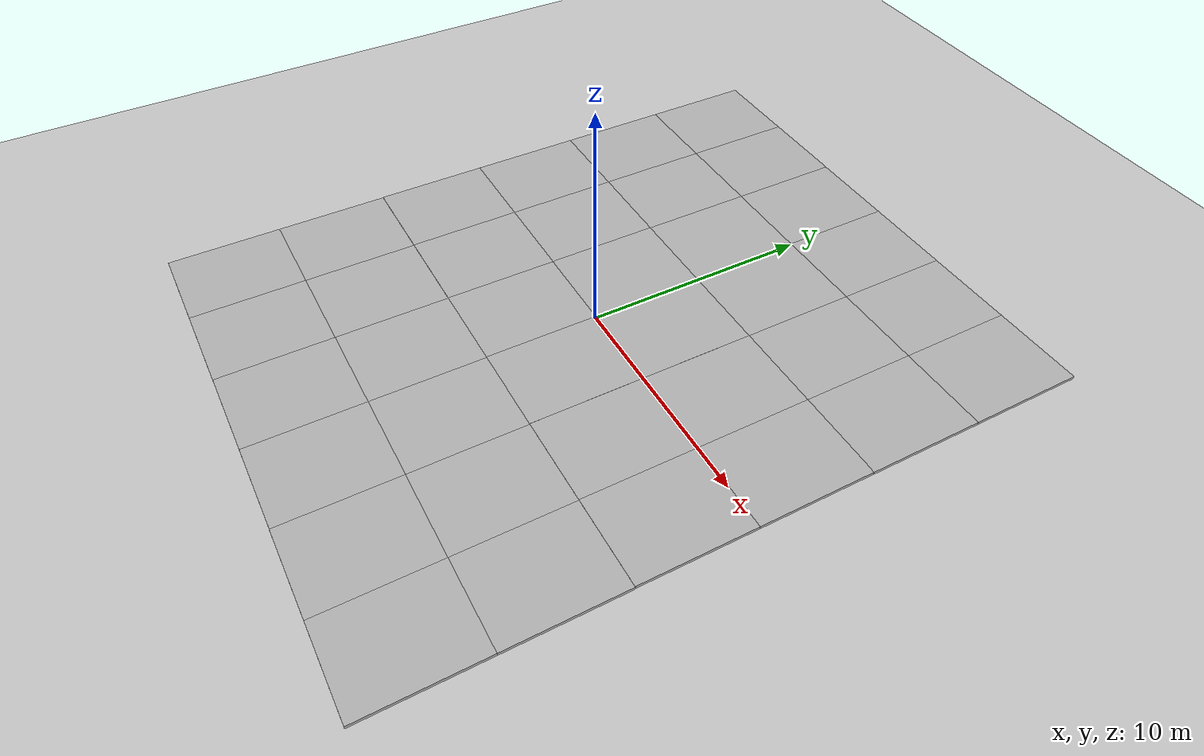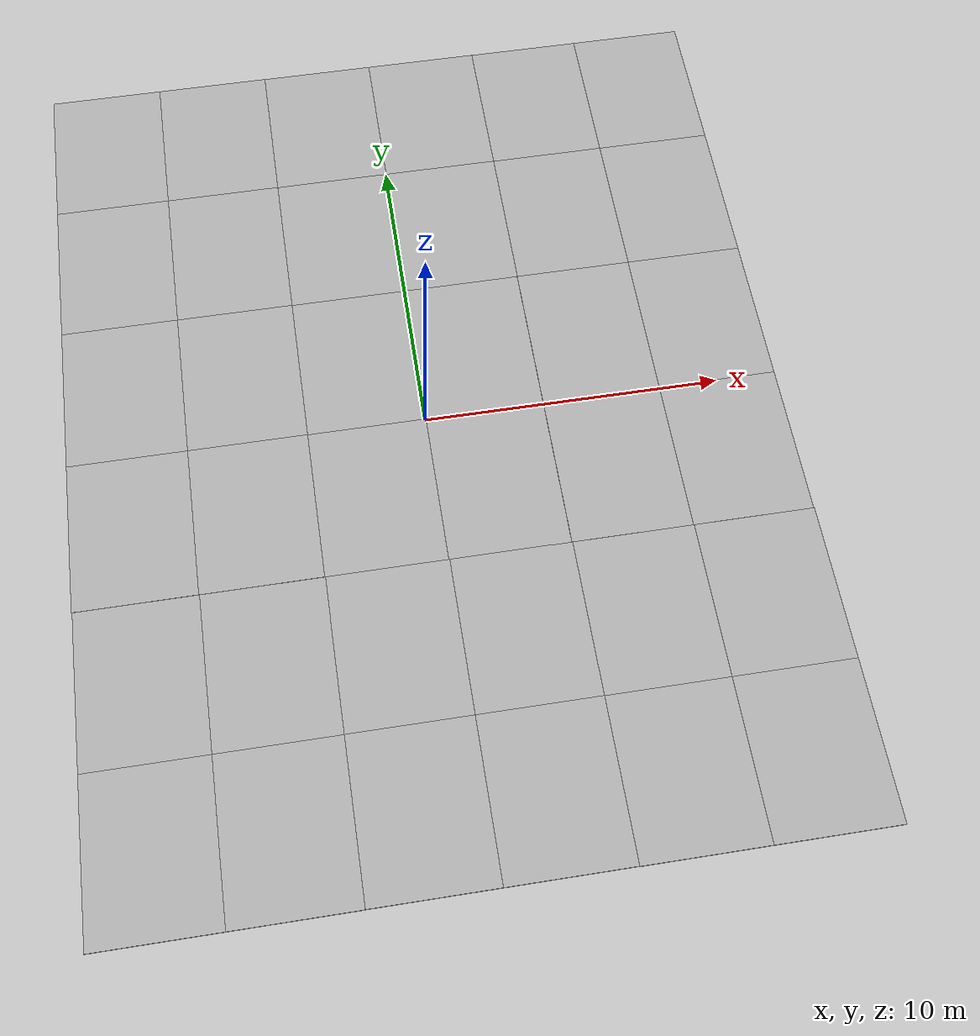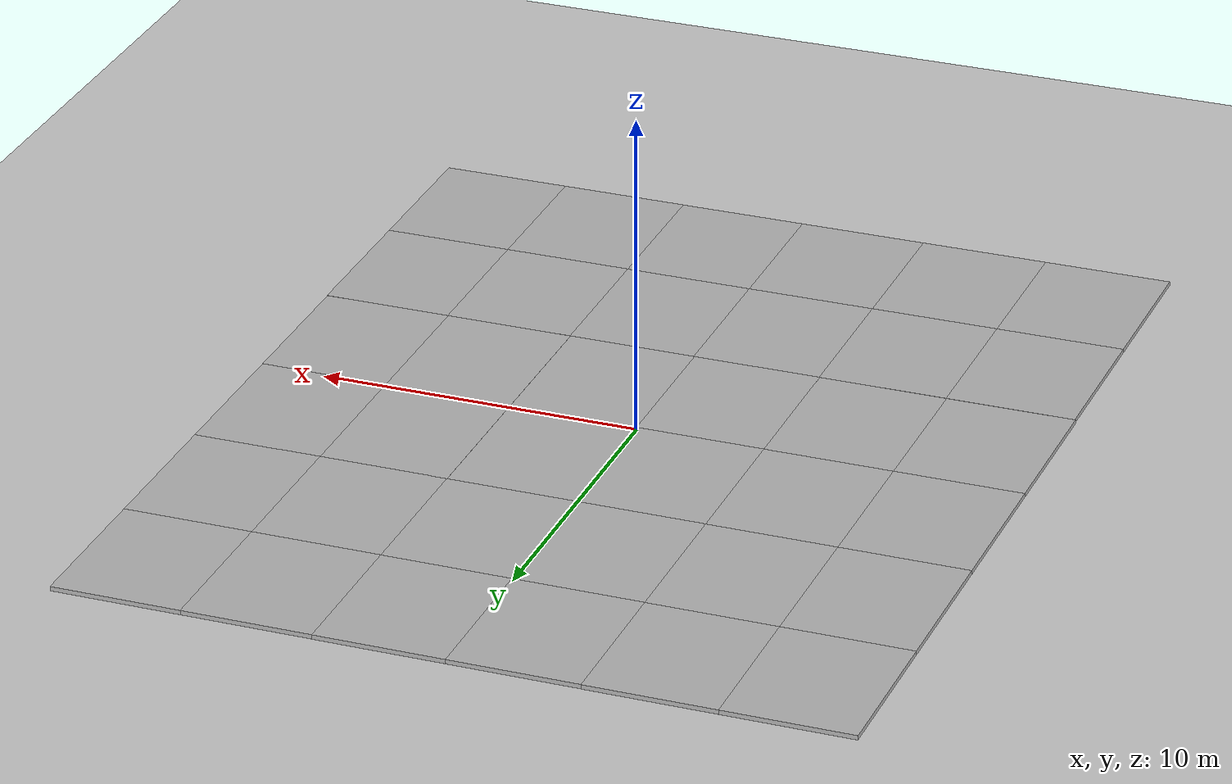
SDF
<sdf version="1.7">
 <world name="default">
  <include><uri>model://apriltag_landing_pad</uri></include>
  <model name="ground_plane">
   <static>1</static>
   <link name="link">
    <collision name="collision">
     <geometry><plane><normal>0 0 1</normal><size>100 100</size></plane></geometry>
     <surface>
      <contact><collide_bitmask>65535</collide_bitmask></contact>
      <friction><ode><mu>100</mu><mu2>50</mu2></ode></friction>
     </surface>
    </collision>
    <visual name="visual">
     <cast_shadows>0</cast_shadows>
     <geometry><plane><normal>0 0 1</normal><size>100 100</size></plane></geometry>
     <material>
      <script><uri>file://media/materials/scripts/gazebo.material</uri><name>Gazebo/Grey</name></script>
     </material>
    </visual>
   </link>
  </model>
  <light name="sun" type="directional">
   <pose>0 0 10 0 -0 0</pose>
   <diffuse>0.8 0.8 0.8 1</diffuse>
   <specular>0.2 0.2 0.2 1</specular>
   <attenuation>
    <range>1000</range>
    <constant>0.9</constant>
    <linear>0.01</linear>
    <quadratic>0.001</quadratic>
   </attenuation>
   <direction>-0.5 0.1 -0.9</direction>
   <spot><inner_angle>0</inner_angle><outer_angle>0</outer_angle><falloff>0</falloff></spot>
  </light>
  <model name="mud_box">
   <static>1</static>
   <link name="mud_box::link">
    <collision name="collision"><geometry><box><size>8 10 0.2</size></box></geometry></collision>
    <visual name="visual_1">
     <pose>-2 2.5 0 0 -0 0</pose>
     <cast_shadows>0</cast_shadows>
     <geometry><box><size>4 5 0.2</size></box></geometry>
     <material>
      <script>
       <uri>model://mud_box/materials/scripts</uri>
       <uri>model://mud_box/materials/textures</uri>
       <name>vrc/mud</name>
      </script>
     </material>
    </visual>
    <visual name="visual_2">
     <pose>2 2.5 0 0 -0 0</pose>
     <cast_shadows>0</cast_shadows>
     <geometry><box><size>4 5 0.2</size></box></geometry>
     <material>
      <script>
       <uri>model://mud_box/materials/scripts</uri>
       <uri>model://mud_box/materials/textures</uri>
       <name>vrc/mud</name>
      </script>
     </material>
    </visual>
    <visual name="visual_3">
     <pose>2 -2.5 0 0 -0 0</pose>
     <cast_shadows>0</cast_shadows>
     <geometry><box><size>4 5 0.2</size></box></geometry>
     <material>
      <script>
       <uri>model://mud_box/materials/scripts</uri>
       <uri>model://mud_box/materials/textures</uri>
       <name>vrc/mud</name>
      </script>
     </material>
    </visual>
    <visual name="visual_4">
     <pose>-2 -2.5 0 0 -0 0</pose>
     <cast_shadows>0</cast_shadows>
     <geometry><box><size>4 5 0.2</size></box></geometry>
     <material>
      <script>
       <uri>model://mud_box/materials/scripts</uri>
       <uri>model://mud_box/materials/textures</uri>
       <name>vrc/mud</name>
      </script>
     </material>
    </visual>
   </link>
  </model>
  <physics name="default_physics" default="0" type="ode">
   <ode>
    <solver>
     <type>quick</type>
     <iters>10</iters>
     <sor>1.3</sor>
     <use_dynamic_moi_rescaling>0</use_dynamic_moi_rescaling>
    </solver>
    <constraints>
     <cfm>0</cfm>
     <erp>0.2</erp>
     <contact_max_correcting_vel>100</contact_max_correcting_vel>
     <contact_surface_layer>0.001</contact_surface_layer>
    </constraints>
   </ode>
   <max_step_size>0.004</max_step_size>
   <real_time_factor>1</real_time_factor>
   <real_time_update_rate>250</real_time_update_rate>
  </physics>
  <gravity>0 0 -9.8066</gravity>
  <magnetic_field>6e-06 2.3e-05 -4.2e-05</magnetic_field>
  <atmosphere type="adiabatic"/>
  <scene><ambient>0.4 0.4 0.4 1</ambient><background>0.7 0.7 0.7 1</background><shadows>1</shadows></scene>
  <spherical_coordinates>
   <surface_model>EARTH_WGS84</surface_model>
   <latitude_deg>0</latitude_deg>
   <longitude_deg>0</longitude_deg>
   <elevation>0</elevation>
   <heading_deg>0</heading_deg>
  </spherical_coordinates>
  <model name="mud_box_clone">
   <static>1</static>
   <link name="mud_box::link">
    <collision name="collision"><geometry><box><size>8 10 0.2</size></box></geometry></collision>
    <visual name="visual_1">
     <pose>-2 2.5 0 0 -0 0</pose>
     <cast_shadows>0</cast_shadows>
     <geometry><box><size>4 5 0.2</size></box></geometry>
     <material>
      <script>
       <uri>model://mud_box/materials/scripts</uri>
       <uri>model://mud_box/materials/textures</uri>
       <name>vrc/mud</name>
      </script>
     </material>
    </visual>
    <visual name="visual_2">
     <pose>2 2.5 0 0 -0 0</pose>
     <cast_shadows>0</cast_shadows>
     <geometry><box><size>4 5 0.2</size></box></geometry>
     <material>
      <script>
       <uri>model://mud_box/materials/scripts</uri>
       <uri>model://mud_box/materials/textures</uri>
       <name>vrc/mud</name>
      </script>
     </material>
    </visual>
    <visual name="visual_3">
     <pose>2 -2.5 0 0 -0 0</pose>
     <cast_shadows>0</cast_shadows>
     <geometry><box><size>4 5 0.2</size></box></geometry>
     <material>
      <script>
       <uri>model://mud_box/materials/scripts</uri>
       <uri>model://mud_box/materials/textures</uri>
       <name>vrc/mud</name>
      </script>
     </material>
    </visual>
    <visual name="visual_4">
     <pose>-2 -2.5 0 0 -0 0</pose>
     <cast_shadows>0</cast_shadows>
     <geometry><box><size>4 5 0.2</size></box></geometry>
     <material>
      <script>
       <uri>model://mud_box/materials/scripts</uri>
       <uri>model://mud_box/materials/textures</uri>
       <name>vrc/mud</name>
      </script>
     </material>
    </visual>
   </link>
   <pose>8.00343 0.003954 0 0 -0 0</pose>
  </model>
  <model name="mud_box_clone_0">
   <static>1</static>
   <link name="mud_box::link">
    <collision name="collision"><geometry><box><size>8 10 0.2</size></box></geometry></collision>
    <visual name="visual_1">
     <pose>-2 2.5 0 0 -0 0</pose>
     <cast_shadows>0</cast_shadows>
     <geometry><box><size>4 5 0.2</size></box></geometry>
     <material>
      <script>
       <uri>model://mud_box/materials/scripts</uri>
       <uri>model://mud_box/materials/textures</uri>
       <name>vrc/mud</name>
      </script>
     </material>
    </visual>
    <visual name="visual_2">
     <pose>2 2.5 0 0 -0 0</pose>
     <cast_shadows>0</cast_shadows>
     <geometry><box><size>4 5 0.2</size></box></geometry>
     <material>
      <script>
       <uri>model://mud_box/materials/scripts</uri>
       <uri>model://mud_box/materials/textures</uri>
       <name>vrc/mud</name>
      </script>
     </material>
    </visual>
    <visual name="visual_3">
     <pose>2 -2.5 0 0 -0 0</pose>
     <cast_shadows>0</cast_shadows>
     <geometry><box><size>4 5 0.2</size></box></geometry>
     <material>
      <script>
       <uri>model://mud_box/materials/scripts</uri>
       <uri>model://mud_box/materials/textures</uri>
       <name>vrc/mud</name>
      </script>
     </material>
    </visual>
    <visual name="visual_4">
     <pose>-2 -2.5 0 0 -0 0</pose>
     <cast_shadows>0</cast_shadows>
     <geometry><box><size>4 5 0.2</size></box></geometry>
     <material>
      <script>
       <uri>model://mud_box/materials/scripts</uri>
       <uri>model://mud_box/materials/textures</uri>
       <name>vrc/mud</name>
      </script>
     </material>
    </visual>
   </link>
   <pose>8.02449 -9.99779 0 0 -0 0</pose>
  </model>
  <model name="mud_box_clone_1">
   <static>1</static>
   <link name="mud_box::link">
    <collision name="collision"><geometry><box><size>8 10 0.2</size></box></geometry></collision>
    <visual name="visual_1">
     <pose>-2 2.5 0 0 -0 0</pose>
     <cast_shadows>0</cast_shadows>
     <geometry><box><size>4 5 0.2</size></box></geometry>
     <material>
      <script>
       <uri>model://mud_box/materials/scripts</uri>
       <uri>model://mud_box/materials/textures</uri>
       <name>vrc/mud</name>
      </script>
     </material>
    </visual>
    <visual name="visual_2">
     <pose>2 2.5 0 0 -0 0</pose>
     <cast_shadows>0</cast_shadows>
     <geometry><box><size>4 5 0.2</size></box></geometry>
     <material>
      <script>
       <uri>model://mud_box/materials/scripts</uri>
       <uri>model://mud_box/materials/textures</uri>
       <name>vrc/mud</name>
      </script>
     </material>
    </visual>
    <visual name="visual_3">
     <pose>2 -2.5 0 0 -0 0</pose>
     <cast_shadows>0</cast_shadows>
     <geometry><box><size>4 5 0.2</size></box></geometry>
     <material>
      <script>
       <uri>model://mud_box/materials/scripts</uri>
       <uri>model://mud_box/materials/textures</uri>
       <name>vrc/mud</name>
      </script>
     </material>
    </visual>
    <visual name="visual_4">
     <pose>-2 -2.5 0 0 -0 0</pose>
     <cast_shadows>0</cast_shadows>
     <geometry><box><size>4 5 0.2</size></box></geometry>
     <material>
      <script>
       <uri>model://mud_box/materials/scripts</uri>
       <uri>model://mud_box/materials/textures</uri>
       <name>vrc/mud</name>
      </script>
     </material>
    </visual>
   </link>
   <pose>0.029636 -9.99099 0 0 -0 0</pose>
  </model>
  <model name="mud_box_clone_2">
   <static>1</static>
   <link name="mud_box::link">
    <collision name="collision"><geometry><box><size>8 10 0.2</size></box></geometry></collision>
    <visual name="visual_1">
     <pose>-2 2.5 0 0 -0 0</pose>
     <cast_shadows>0</cast_shadows>
     <geometry><box><size>4 5 0.2</size></box></geometry>
     <material>
      <script>
       <uri>model://mud_box/materials/scripts</uri>
       <uri>model://mud_box/materials/textures</uri>
       <name>vrc/mud</name>
      </script>
     </material>
    </visual>
    <visual name="visual_2">
     <pose>2 2.5 0 0 -0 0</pose>
     <cast_shadows>0</cast_shadows>
     <geometry><box><size>4 5 0.2</size></box></geometry>
     <material>
      <script>
       <uri>model://mud_box/materials/scripts</uri>
       <uri>model://mud_box/materials/textures</uri>
       <name>vrc/mud</name>
      </script>
     </material>
    </visual>
    <visual name="visual_3">
     <pose>2 -2.5 0 0 -0 0</pose>
     <cast_shadows>0</cast_shadows>
     <geometry><box><size>4 5 0.2</size></box></geometry>
     <material>
      <script>
       <uri>model://mud_box/materials/scripts</uri>
       <uri>model://mud_box/materials/textures</uri>
       <name>vrc/mud</name>
      </script>
     </material>
    </visual>
    <visual name="visual_4">
     <pose>-2 -2.5 0 0 -0 0</pose>
     <cast_shadows>0</cast_shadows>
     <geometry><box><size>4 5 0.2</size></box></geometry>
     <material>
      <script>
       <uri>model://mud_box/materials/scripts</uri>
       <uri>model://mud_box/materials/textures</uri>
       <name>vrc/mud</name>
      </script>
     </material>
    </visual>
   </link>
   <pose>0.011879 9.99829 0 0 -0 0</pose>
  </model>
  <model name="mud_box_clone_3">
   <static>1</static>
   <link name="mud_box::link">
    <collision name="collision"><geometry><box><size>8 10 0.2</size></box></geometry></collision>
    <visual name="visual_1">
     <pose>-2 2.5 0 0 -0 0</pose>
     <cast_shadows>0</cast_shadows>
     <geometry><box><size>4 5 0.2</size></box></geometry>
     <material>
      <script>
       <uri>model://mud_box/materials/scripts</uri>
       <uri>model://mud_box/materials/textures</uri>
       <name>vrc/mud</name>
      </script>
     </material>
    </visual>
    <visual name="visual_2">
     <pose>2 2.5 0 0 -0 0</pose>
     <cast_shadows>0</cast_shadows>
     <geometry><box><size>4 5 0.2</size></box></geometry>
     <material>
      <script>
       <uri>model://mud_box/materials/scripts</uri>
       <uri>model://mud_box/materials/textures</uri>
       <name>vrc/mud</name>
      </script>
     </material>
    </visual>
    <visual name="visual_3">
     <pose>2 -2.5 0 0 -0 0</pose>
     <cast_shadows>0</cast_shadows>
     <geometry><box><size>4 5 0.2</size></box></geometry>
     <material>
      <script>
       <uri>model://mud_box/materials/scripts</uri>
       <uri>model://mud_box/materials/textures</uri>
       <name>vrc/mud</name>
      </script>
     </material>
    </visual>
    <visual name="visual_4">
     <pose>-2 -2.5 0 0 -0 0</pose>
     <cast_shadows>0</cast_shadows>
     <geometry><box><size>4 5 0.2</size></box></geometry>
     <material>
      <script>
       <uri>model://mud_box/materials/scripts</uri>
       <uri>model://mud_box/materials/textures</uri>
       <name>vrc/mud</name>
      </script>
     </material>
    </visual>
   </link>
   <pose>8.0066 9.99052 0 0 -0 0</pose>
  </model>
  <model name="mud_box_clone_4">
   <static>1</static>
   <link name="mud_box::link">
    <collision name="collision"><geometry><box><size>8 10 0.2</size></box></geometry></collision>
    <visual name="visual_1">
     <pose>-2 2.5 0 0 -0 0</pose>
     <cast_shadows>0</cast_shadows>
     <geometry><box><size>4 5 0.2</size></box></geometry>
     <material>
      <script>
       <uri>model://mud_box/materials/scripts</uri>
       <uri>model://mud_box/materials/textures</uri>
       <name>vrc/mud</name>
      </script>
     </material>
    </visual>
    <visual name="visual_2">
     <pose>2 2.5 0 0 -0 0</pose>
     <cast_shadows>0</cast_shadows>
     <geometry><box><size>4 5 0.2</size></box></geometry>
     <material>
      <script>
       <uri>model://mud_box/materials/scripts</uri>
       <uri>model://mud_box/materials/textures</uri>
       <name>vrc/mud</name>
      </script>
     </material>
    </visual>
    <visual name="visual_3">
     <pose>2 -2.5 0 0 -0 0</pose>
     <cast_shadows>0</cast_shadows>
     <geometry><box><size>4 5 0.2</size></box></geometry>
     <material>
      <script>
       <uri>model://mud_box/materials/scripts</uri>
       <uri>model://mud_box/materials/textures</uri>
       <name>vrc/mud</name>
      </script>
     </material>
    </visual>
    <visual name="visual_4">
     <pose>-2 -2.5 0 0 -0 0</pose>
     <cast_shadows>0</cast_shadows>
     <geometry><box><size>4 5 0.2</size></box></geometry>
     <material>
      <script>
       <uri>model://mud_box/materials/scripts</uri>
       <uri>model://mud_box/materials/textures</uri>
       <name>vrc/mud</name>
      </script>
     </material>
    </visual>
   </link>
   <pose>-7.98596 10.0065 0 0 -0 0</pose>
  </model>
  <model name="mud_box_clone_5">
   <static>1</static>
   <link name="mud_box::link">
    <collision name="collision"><geometry><box><size>8 10 0.2</size></box></geometry></collision>
    <visual name="visual_1">
     <pose>-2 2.5 0 0 -0 0</pose>
     <cast_shadows>0</cast_shadows>
     <geometry><box><size>4 5 0.2</size></box></geometry>
     <material>
      <script>
       <uri>model://mud_box/materials/scripts</uri>
       <uri>model://mud_box/materials/textures</uri>
       <name>vrc/mud</name>
      </script>
     </material>
    </visual>
    <visual name="visual_2">
     <pose>2 2.5 0 0 -0 0</pose>
     <cast_shadows>0</cast_shadows>
     <geometry><box><size>4 5 0.2</size></box></geometry>
     <material>
      <script>
       <uri>model://mud_box/materials/scripts</uri>
       <uri>model://mud_box/materials/textures</uri>
       <name>vrc/mud</name>
      </script>
     </material>
    </visual>
    <visual name="visual_3">
     <pose>2 -2.5 0 0 -0 0</pose>
     <cast_shadows>0</cast_shadows>
     <geometry><box><size>4 5 0.2</size></box></geometry>
     <material>
      <script>
       <uri>model://mud_box/materials/scripts</uri>
       <uri>model://mud_box/materials/textures</uri>
       <name>vrc/mud</name>
      </script>
     </material>
    </visual>
    <visual name="visual_4">
     <pose>-2 -2.5 0 0 -0 0</pose>
     <cast_shadows>0</cast_shadows>
     <geometry><box><size>4 5 0.2</size></box></geometry>
     <material>
      <script>
       <uri>model://mud_box/materials/scripts</uri>
       <uri>model://mud_box/materials/textures</uri>
       <name>vrc/mud</name>
      </script>
     </material>
    </visual>
   </link>
   <pose>-7.98638 0.009658 0 0 -0 0</pose>
  </model>
  <model name="mud_box_clone_6">
   <static>1</static>
   <link name="mud_box::link">
    <collision name="collision"><geometry><box><size>8 10 0.2</size></box></geometry></collision>
    <visual name="visual_1">
     <pose>-2 2.5 0 0 -0 0</pose>
     <cast_shadows>0</cast_shadows>
     <geometry><box><size>4 5 0.2</size></box></geometry>
     <material>
      <script>
       <uri>model://mud_box/materials/scripts</uri>
       <uri>model://mud_box/materials/textures</uri>
       <name>vrc/mud</name>
      </script>
     </material>
    </visual>
    <visual name="visual_2">
     <pose>2 2.5 0 0 -0 0</pose>
     <cast_shadows>0</cast_shadows>
     <geometry><box><size>4 5 0.2</size></box></geometry>
     <material>
      <script>
       <uri>model://mud_box/materials/scripts</uri>
       <uri>model://mud_box/materials/textures</uri>
       <name>vrc/mud</name>
      </script>
     </material>
    </visual>
    <visual name="visual_3">
     <pose>2 -2.5 0 0 -0 0</pose>
     <cast_shadows>0</cast_shadows>
     <geometry><box><size>4 5 0.2</size></box></geometry>
     <material>
      <script>
       <uri>model://mud_box/materials/scripts</uri>
       <uri>model://mud_box/materials/textures</uri>
       <name>vrc/mud</name>
      </script>
     </material>
    </visual>
    <visual name="visual_4">
     <pose>-2 -2.5 0 0 -0 0</pose>
     <cast_shadows>0</cast_shadows>
     <geometry><box><size>4 5 0.2</size></box></geometry>
     <material>
      <script>
       <uri>model://mud_box/materials/scripts</uri>
       <uri>model://mud_box/materials/textures</uri>
       <name>vrc/mud</name>
      </script>
     </material>
    </visual>
   </link>
   <pose>-7.96249 -9.99577 0 0 -0 0</pose>
  </model>
 </world>
</sdf>

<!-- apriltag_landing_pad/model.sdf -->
<sdf version='1.6'>
  <model name='apriltag_landing_pad'>
    <link name='main'>
    <pose frame=''>0 0 0 0 0 0</pose>
      <visual name='main_Visual'>
        <geometry>
          <box>
            <size>1.0 1.0 0.01</size>
          </box>
        </geometry>
        <material>
          <script>
            <uri>model://apriltag_landing_pad/materials/scripts</uri>
            <uri>model://apriltag_landing_pad/materials/textures</uri>
            <name>landing_pad_material</name>
          </script>
        </material>
      </visual>
     </link>
    <static>1</static>
  </model>
</sdf>
